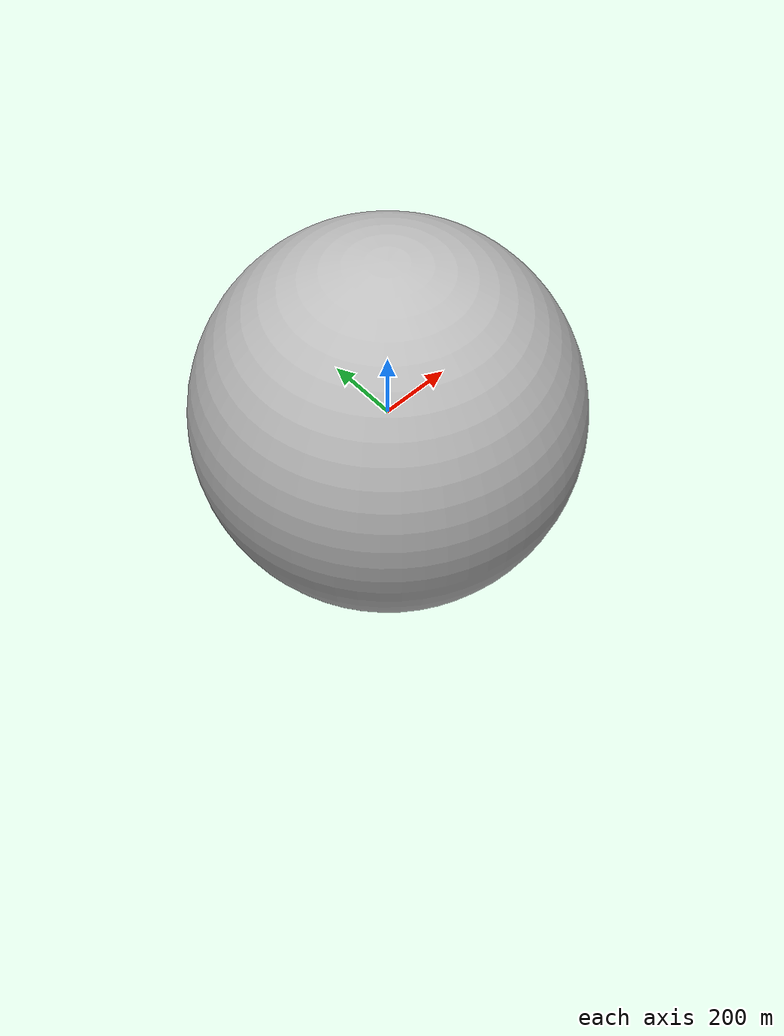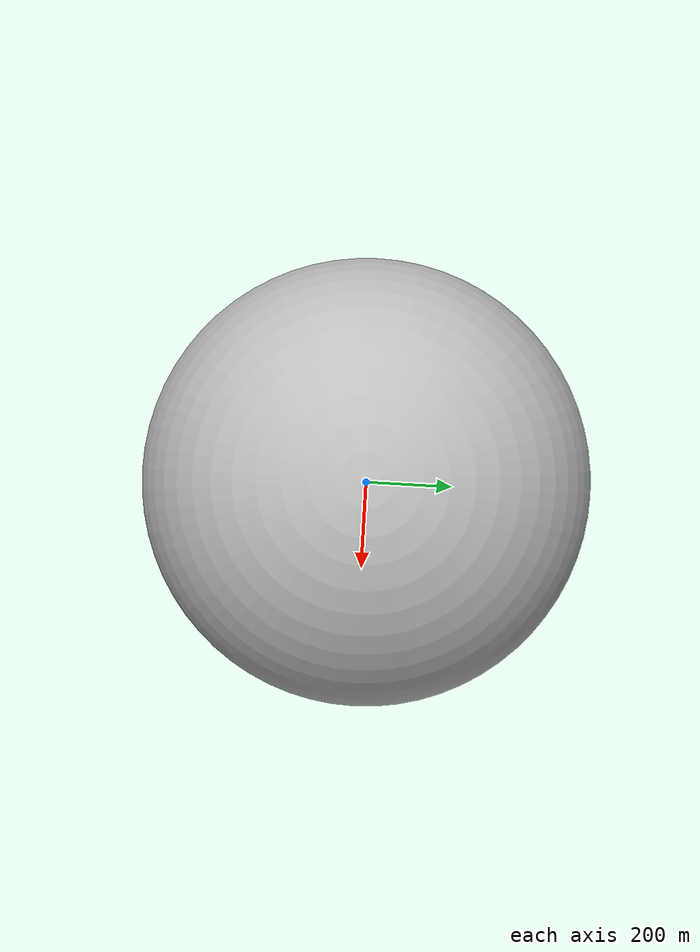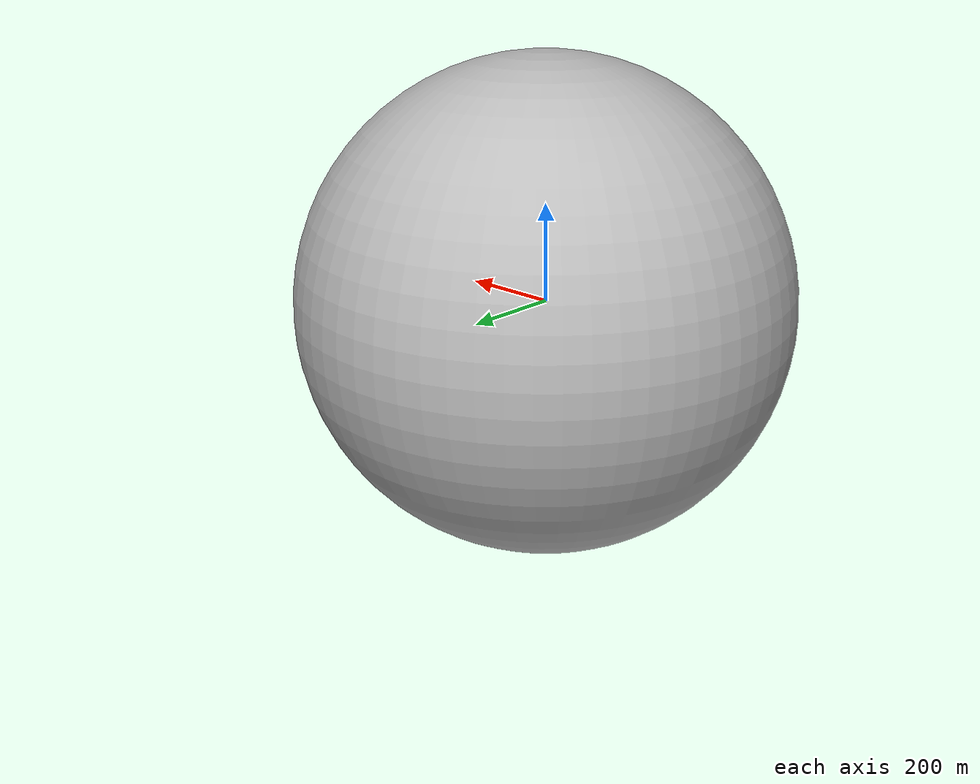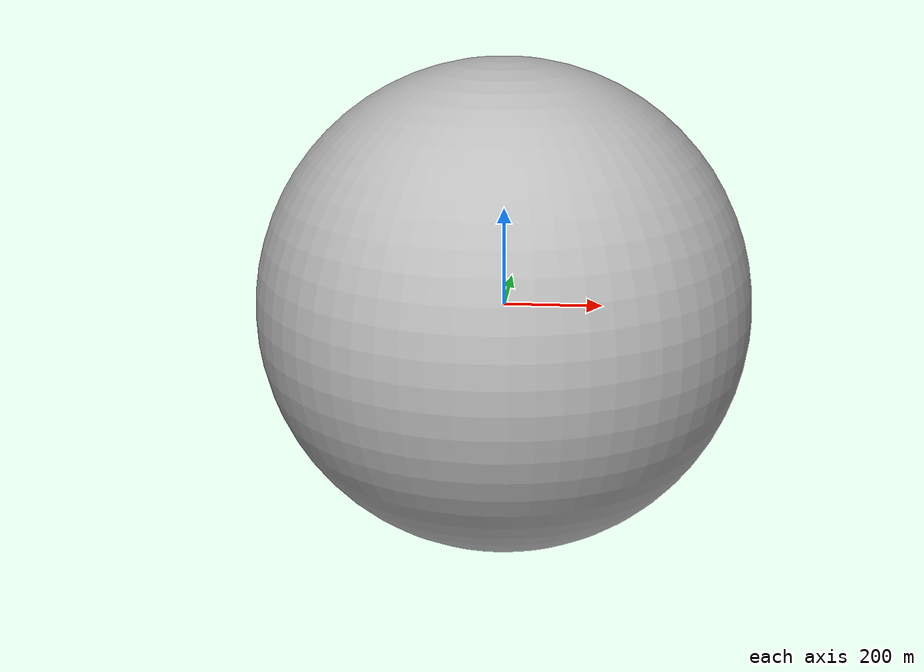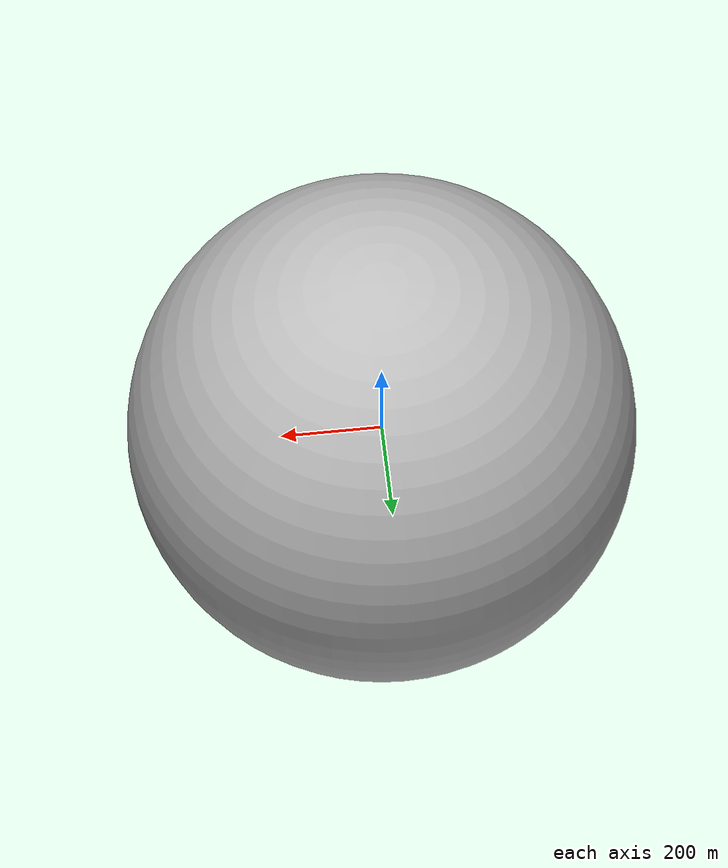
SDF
<?xml version="1.0" ?>
<sdf version="1.6">
  <world name="cozy_room_world">

    <scene>
      <grid>false</grid>
    </scene>

    <!-- Sun Light -->
    <light type="directional" name="sun">
      <cast_shadows>true</cast_shadows>
      <pose>0 0 10 0 -0 0</pose>
      <diffuse>0.8 0.8 0.8 1</diffuse>
      <specular>0.2 0.2 0.2 1</specular>
      <attenuation>
        <range>1000</range>
        <constant>0.9</constant>
        <linear>0.01</linear>
        <quadratic>0.001</quadratic>
      </attenuation>
      <direction>-0.5 0.5 -1</direction>
    </light>

    <!-- Environment -->
    <include>
      <uri>model://cozy_room</uri>
    </include>

    <!-- Background Model -->
    <include>
      <uri>model://background_space</uri>
    </include>

    <plugin name="gazebo_ros_state" filename="libgazebo_ros_state.so">
      <ros>
        <namespace>/gazebo</namespace>
      </ros>
      <update_rate>5.0</update_rate>
    </plugin>
  </world>
</sdf>

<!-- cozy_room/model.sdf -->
<sdf version='1.4'>
  <model name="cozy_room">
      <static>1</static>
        <link name='link_1'>
            <visual name='visual'>
            <pose frame=''>0 0 0 0 0 0</pose>
            <geometry>
            <mesh>
                <uri>model://cozy_room/meshes/cozy_room.dae</uri>
                <scale>1 1 1</scale>
            </mesh>
            </geometry>
            <cast_shadows>0</cast_shadows>
            <transparency>0</transparency>
        </visual>

        <collision name='collision'>
            <laser_retro>0</laser_retro>
            <pose frame=''>0 0 0 0 0 0</pose>
            <geometry>
            <mesh>
                <uri>model://cozy_room/meshes/cozy_room.dae</uri>
                <scale>1 1 1</scale>
            </mesh>
            </geometry>
        </collision>
        </link>
  </model>
</sdf>

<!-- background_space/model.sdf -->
<sdf version='1.4'>
  <model name="background_space">
      <static>1</static>
        <link name='link_1'>
            <visual name='visual'>
            <pose frame=''>0 0 0 0 0 0</pose>
            <geometry>
            <mesh>
                <uri>model://background_space/meshes/space.dae</uri>
                <scale>1 1 1</scale>
            </mesh>
            </geometry>
            <cast_shadows>0</cast_shadows>
            <transparency>0</transparency>
        </visual>
        </link>
  </model>
</sdf>
